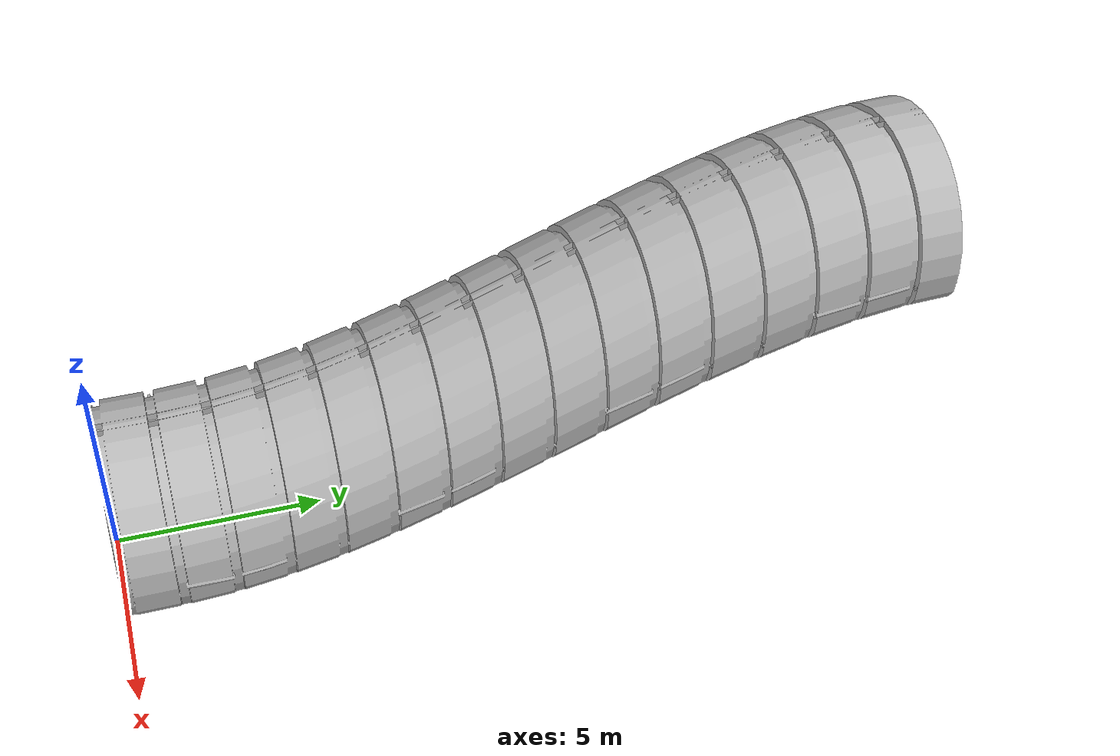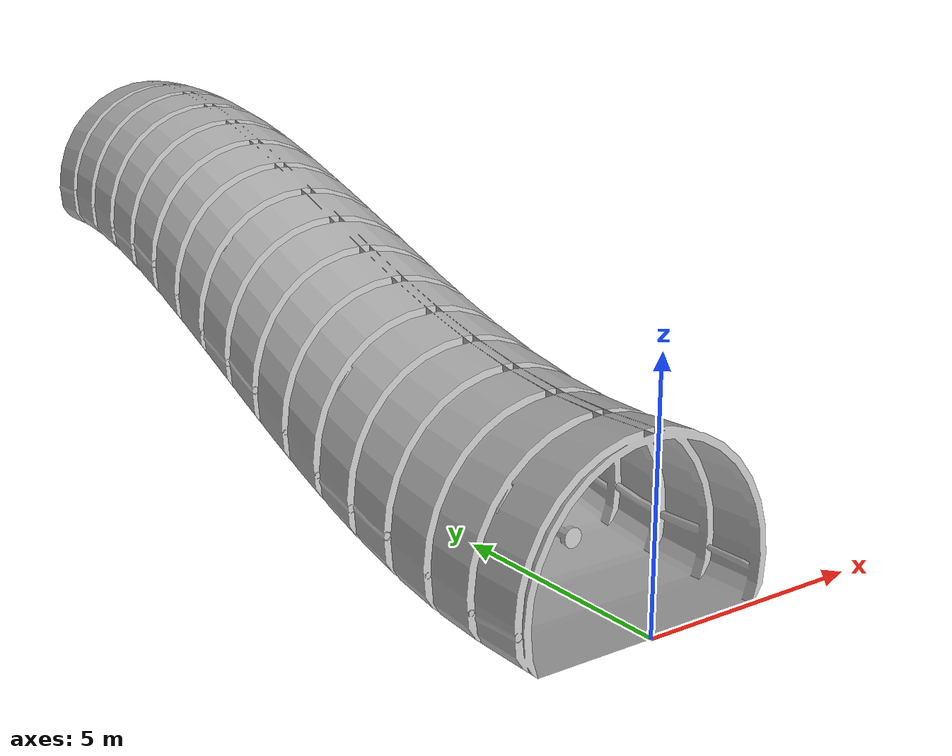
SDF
<?xml version="1.0" ?>
<sdf version="1.6">
  <model name="tunnel_elevation">
    <static>true</static>
    <link name="link">
      <collision name="collision">
        <geometry>
          <mesh>
            <scale>0.01 0.01 0.01</scale>
            <uri>model://tunnel_elevation/meshes/Tunnel_Elevation.obj</uri>
          </mesh>
        </geometry>
      </collision>
      <visual name="visual">
        <geometry>
          <mesh>
            <scale>0.01 0.01 0.01</scale>
            <uri>model://tunnel_elevation/meshes/Tunnel_Elevation.obj</uri>
          </mesh>
        </geometry>
      </visual>
    </link>
  </model>
</sdf>
